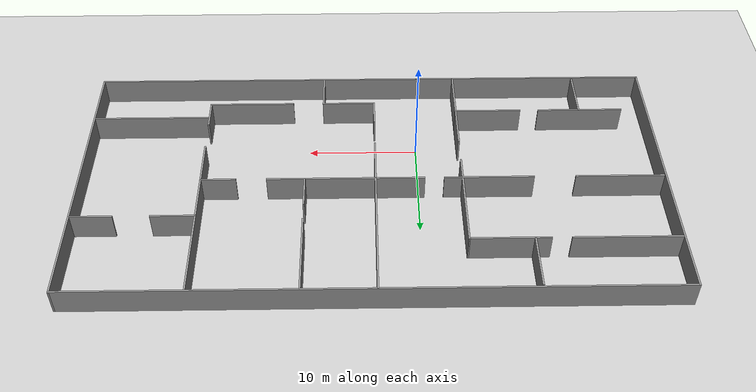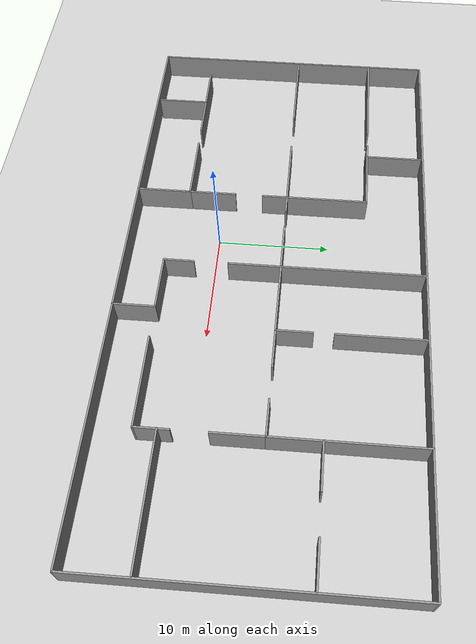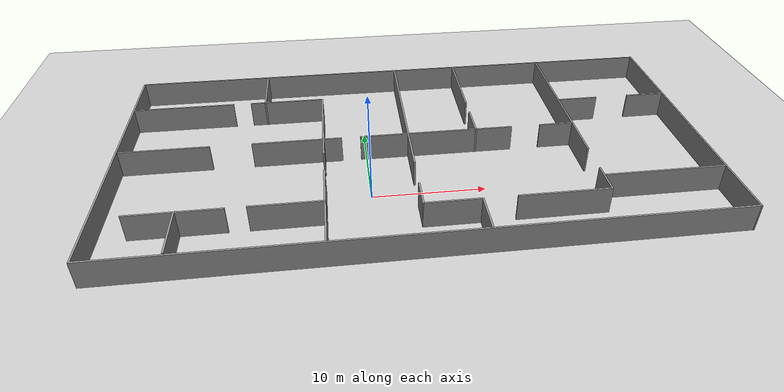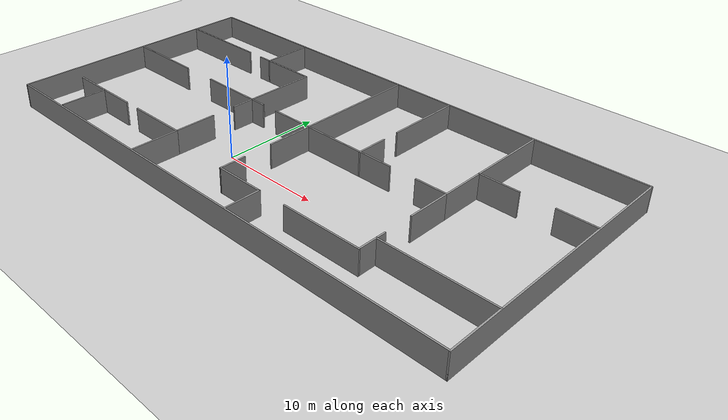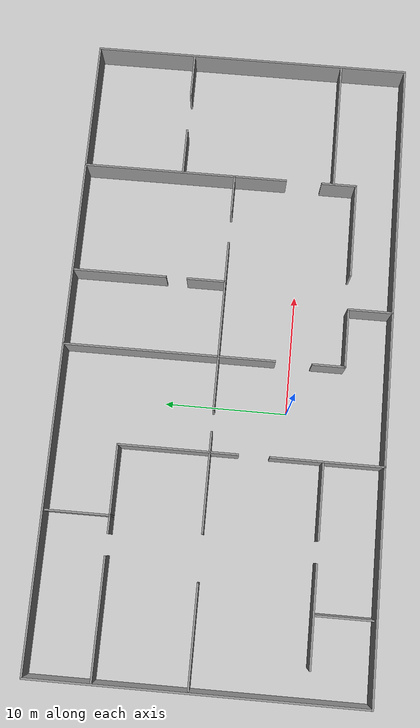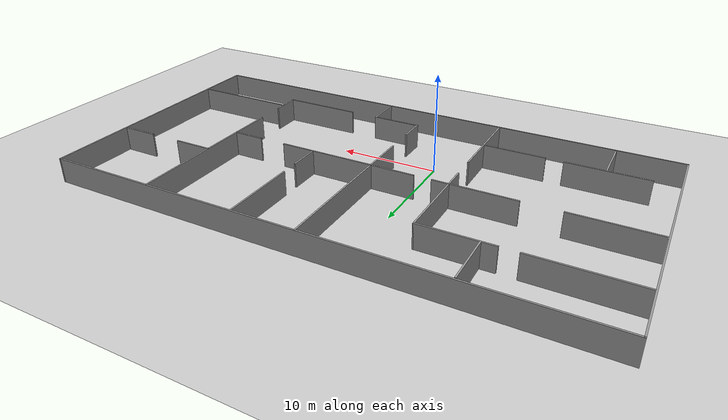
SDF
<sdf version="1.7">
 <world name="default">
  <plugin name="XBot::GzClockPlugin" filename="libxbot2_gz_clock.so"/>
  <gravity>0 0 -9.81</gravity>
  <model name="ground_plane">
   <static>1</static>
   <link name="link">
    <collision name="collision">
     <geometry><plane><normal>0 0 1</normal><size>100 100</size></plane></geometry>
     <surface><friction><ode><mu>1</mu><mu2>1</mu2></ode></friction></surface>
    </collision>
    <visual name="visual">
     <cast_shadows>0</cast_shadows>
     <geometry><plane><normal>0 0 1</normal><size>100 100</size></plane></geometry>
     <material>
      <script><uri>file://media/materials/scripts/gazebo.material</uri><name>Gazebo/Grey</name></script>
     </material>
    </visual>
   </link>
  </model>
  <light name="sun" type="directional">
   <pose>0 0 10 0 -0 0</pose>
   <diffuse>0.8 0.8 0.8 1</diffuse>
   <specular>0.2 0.2 0.2 1</specular>
   <attenuation>
    <range>1000</range>
    <constant>0.9</constant>
    <linear>0.01</linear>
    <quadratic>0.001</quadratic>
   </attenuation>
   <direction>-0.5 0.1 -0.9</direction>
   <spot><inner_angle>0</inner_angle><outer_angle>0</outer_angle><falloff>0</falloff></spot>
  </light>
  <physics name="update_rate" type="ode">
   <real_time_update_rate>4000</real_time_update_rate>
   <max_step_size>0.00025</max_step_size>
   <max_contacts>5</max_contacts>
   <bullet>
    <solver><iters>100</iters><sor>1.55</sor><type>sequential_impulse</type></solver>
    <constraints>
     <contact_surface_layer>0.2</contact_surface_layer>
     <cfm>0.005</cfm>
     <erp>0.2</erp>
     <split_impulse>1</split_impulse>
     <split_impulse_penetration_threshold>-0.01</split_impulse_penetration_threshold>
    </constraints>
   </bullet>
   <ode>
    <solver>
     <iters>50</iters>
     <sor>1.2</sor>
     <type>quick</type>
     <use_dynamic_moi_rescaling>0</use_dynamic_moi_rescaling>
    </solver>
    <constraints>
     <contact_surface_layer>0.0002</contact_surface_layer>
     <contact_max_correcting_vel>500</contact_max_correcting_vel>
     <cfm>1e-06</cfm>
     <erp>0.3</erp>
    </constraints>
   </ode>
   <real_time_factor>1</real_time_factor>
  </physics>
  <magnetic_field>6e-06 2.3e-05 -4.2e-05</magnetic_field>
  <atmosphere type="adiabatic"/>
  <scene><ambient>0.4 0.4 0.4 1</ambient><background>0.7 0.7 0.7 1</background><shadows>1</shadows></scene>
  <spherical_coordinates>
   <surface_model>EARTH_WGS84</surface_model>
   <latitude_deg>0</latitude_deg>
   <longitude_deg>0</longitude_deg>
   <elevation>0</elevation>
   <heading_deg>0</heading_deg>
  </spherical_coordinates>
  <model name="HugeFloor">
   <pose>4.15108 5.32375 0 0 -0 0</pose>
   <link name="Wall_10">
    <collision name="Wall_10_Collision">
     <geometry><box><size>26.75 0.15 2.5</size></box></geometry>
     <pose>0 0 1.25 0 -0 0</pose>
    </collision>
    <visual name="Wall_10_Visual">
     <pose>0 0 1.25 0 -0 0</pose>
     <geometry><box><size>26.75 0.15 2.5</size></box></geometry>
     <material>
      <script><uri>file://media/materials/scripts/gazebo.material</uri><name>Gazebo/Grey</name></script>
      <ambient>1 1 1 1</ambient>
     </material>
     <meta><layer>0</layer></meta>
    </visual>
    <pose>26.3 0 0 0 -0 1.5708</pose>
   </link>
   <link name="Wall_11">
    <collision name="Wall_11_Collision">
     <geometry><box><size>52.75 0.15 2.5</size></box></geometry>
     <pose>0 0 1.25 0 -0 0</pose>
    </collision>
    <visual name="Wall_11_Visual">
     <pose>0 0 1.25 0 -0 0</pose>
     <geometry><box><size>52.75 0.15 2.5</size></box></geometry>
     <material>
      <script><uri>file://media/materials/scripts/gazebo.material</uri><name>Gazebo/Grey</name></script>
      <ambient>1 1 1 1</ambient>
     </material>
     <meta><layer>0</layer></meta>
    </visual>
    <pose>1e-06 13.3 0 0 -0 3.14159</pose>
   </link>
   <link name="Wall_12">
    <collision name="Wall_12_Collision">
     <geometry><box><size>26.75 0.15 2.5</size></box></geometry>
     <pose>0 0 1.25 0 -0 0</pose>
    </collision>
    <visual name="Wall_12_Visual">
     <pose>0 0 1.25 0 -0 0</pose>
     <geometry><box><size>26.75 0.15 2.5</size></box></geometry>
     <material>
      <script><uri>file://media/materials/scripts/gazebo.material</uri><name>Gazebo/Grey</name></script>
      <ambient>1 1 1 1</ambient>
     </material>
     <meta><layer>0</layer></meta>
    </visual>
    <pose>-26.3 0 0 0 -0 -1.5708</pose>
   </link>
   <link name="Wall_14">
    <collision name="Wall_14_Collision">
     <geometry><box><size>9.5 0.15 2.5</size></box></geometry>
     <pose>0 0 1.25 0 -0 0</pose>
    </collision>
    <visual name="Wall_14_Visual">
     <pose>0 0 1.25 0 -0 0</pose>
     <geometry><box><size>9.5 0.15 2.5</size></box></geometry>
     <material>
      <script><uri>file://media/materials/scripts/gazebo.material</uri><name>Gazebo/Grey</name></script>
      <ambient>1 1 1 1</ambient>
     </material>
     <meta><layer>0</layer></meta>
    </visual>
    <pose>-21.4892 8.00106 0 0 -0 0</pose>
   </link>
   <link name="Wall_16">
    <collision name="Wall_16_Collision">
     <geometry><box><size>1.5 0.15 2.5</size></box></geometry>
     <pose>0 0 1.25 0 -0 0</pose>
    </collision>
    <visual name="Wall_16_Visual">
     <pose>0 0 1.25 0 -0 0</pose>
     <geometry><box><size>1.5 0.15 2.5</size></box></geometry>
     <material>
      <script><uri>file://media/materials/scripts/gazebo.material</uri><name>Gazebo/Grey</name></script>
      <ambient>1 1 1 1</ambient>
     </material>
     <meta><layer>0</layer></meta>
    </visual>
    <pose>-14.3244 7.97951 0 0 -0 0</pose>
   </link>
   <link name="Wall_17">
    <collision name="Wall_17_Collision">
     <geometry><box><size>5.25 0.15 2.5</size></box></geometry>
     <pose>0 0 1.25 0 -0 0</pose>
    </collision>
    <visual name="Wall_17_Visual">
     <pose>0 0 1.25 0 -0 0</pose>
     <geometry><box><size>5.25 0.15 2.5</size></box></geometry>
     <material>
      <script><uri>file://media/materials/scripts/gazebo.material</uri><name>Gazebo/Grey</name></script>
      <ambient>1 1 1 1</ambient>
     </material>
     <meta><layer>0</layer></meta>
    </visual>
    <pose>-13.6494 10.5295 0 0 -0 1.5708</pose>
   </link>
   <link name="Wall_19">
    <collision name="Wall_19_Collision">
     <geometry><box><size>5.75 0.15 2.5</size></box></geometry>
     <pose>0 0 1.25 0 -0 0</pose>
    </collision>
    <visual name="Wall_19_Visual">
     <pose>0 0 1.25 0 -0 0</pose>
     <geometry><box><size>5.75 0.15 2.5</size></box></geometry>
     <material>
      <script><uri>file://media/materials/scripts/gazebo.material</uri><name>Gazebo/Grey</name></script>
      <ambient>1 1 1 1</ambient>
     </material>
     <meta><layer>0</layer></meta>
    </visual>
    <pose>-10.8494 7.97951 0 0 -0 0</pose>
   </link>
   <link name="Wall_20">
    <collision name="Wall_20_Collision">
     <geometry><box><size>7.5 0.15 2.5</size></box></geometry>
     <pose>0 0 1.25 0 -0 0</pose>
    </collision>
    <visual name="Wall_20_Visual">
     <pose>0 0 1.25 0 -0 0</pose>
     <geometry><box><size>7.5 0.15 2.5</size></box></geometry>
     <material>
      <script><uri>file://media/materials/scripts/gazebo.material</uri><name>Gazebo/Grey</name></script>
      <ambient>1 1 1 1</ambient>
     </material>
     <meta><layer>0</layer></meta>
    </visual>
    <pose>-8.0494 4.30451 0 0 -0 -1.5708</pose>
   </link>
   <link name="Wall_21">
    <collision name="Wall_21_Collision">
     <geometry><box><size>1.75 0.15 2.5</size></box></geometry>
     <pose>0 0 1.25 0 -0 0</pose>
    </collision>
    <visual name="Wall_21_Visual">
     <pose>0 0 1.25 0 -0 0</pose>
     <geometry><box><size>1.75 0.15 2.5</size></box></geometry>
     <material>
      <script><uri>file://media/materials/scripts/gazebo.material</uri><name>Gazebo/Grey</name></script>
      <ambient>1 1 1 1</ambient>
     </material>
     <meta><layer>0</layer></meta>
    </visual>
    <pose>-7.2494 0.629514 0 0 -0 0</pose>
   </link>
   <link name="Wall_23">
    <collision name="Wall_23_Collision">
     <geometry><box><size>4.5 0.15 2.5</size></box></geometry>
     <pose>0 0 1.25 0 -0 0</pose>
    </collision>
    <visual name="Wall_23_Visual">
     <pose>0 0 1.25 0 -0 0</pose>
     <geometry><box><size>4.5 0.15 2.5</size></box></geometry>
     <material>
      <script><uri>file://media/materials/scripts/gazebo.material</uri><name>Gazebo/Grey</name></script>
      <ambient>1 1 1 1</ambient>
     </material>
     <meta><layer>0</layer></meta>
    </visual>
    <pose>-2.4244 0.629514 0 0 -0 0</pose>
   </link>
   <link name="Wall_24">
    <collision name="Wall_24_Collision">
     <geometry><box><size>12.75 0.15 2.5</size></box></geometry>
     <pose>0 0 1.25 0 -0 0</pose>
    </collision>
    <visual name="Wall_24_Visual">
     <pose>0 0 1.25 0 -0 0</pose>
     <geometry><box><size>12.75 0.15 2.5</size></box></geometry>
     <material>
      <script><uri>file://media/materials/scripts/gazebo.material</uri><name>Gazebo/Grey</name></script>
      <ambient>1 1 1 1</ambient>
     </material>
     <meta><layer>0</layer></meta>
    </visual>
    <pose>-0.249404 6.92951 0 0 -0 1.5708</pose>
   </link>
   <link name="Wall_26">
    <collision name="Wall_26_Collision">
     <geometry><box><size>6.5 0.15 2.5</size></box></geometry>
     <pose>0 0 1.25 0 -0 0</pose>
    </collision>
    <visual name="Wall_26_Visual">
     <pose>0 0 1.25 0 -0 0</pose>
     <geometry><box><size>6.5 0.15 2.5</size></box></geometry>
     <material>
      <script><uri>file://media/materials/scripts/gazebo.material</uri><name>Gazebo/Grey</name></script>
      <ambient>1 1 1 1</ambient>
     </material>
     <meta><layer>0</layer></meta>
    </visual>
    <pose>2.9256 0.629514 0 0 -0 0</pose>
   </link>
   <link name="Wall_27">
    <collision name="Wall_27_Collision">
     <geometry><box><size>3.25 0.15 2.5</size></box></geometry>
     <pose>0 0 1.25 0 -0 0</pose>
    </collision>
    <visual name="Wall_27_Visual">
     <pose>0 0 1.25 0 -0 0</pose>
     <geometry><box><size>3.25 0.15 2.5</size></box></geometry>
     <material>
      <script><uri>file://media/materials/scripts/gazebo.material</uri><name>Gazebo/Grey</name></script>
      <ambient>1 1 1 1</ambient>
     </material>
     <meta><layer>0</layer></meta>
    </visual>
    <pose>6.1006 2.17951 0 0 -0 1.5708</pose>
   </link>
   <link name="Wall_29">
    <collision name="Wall_29_Collision">
     <geometry><box><size>7.75 0.15 2.5</size></box></geometry>
     <pose>0 0 1.25 0 -0 0</pose>
    </collision>
    <visual name="Wall_29_Visual">
     <pose>0 0 1.25 0 -0 0</pose>
     <geometry><box><size>7.75 0.15 2.5</size></box></geometry>
     <material>
      <script><uri>file://media/materials/scripts/gazebo.material</uri><name>Gazebo/Grey</name></script>
      <ambient>1 1 1 1</ambient>
     </material>
     <meta><layer>0</layer></meta>
    </visual>
    <pose>6.1006 9.37951 0 0 -0 1.5708</pose>
   </link>
   <link name="Wall_31">
    <collision name="Wall_31_Collision">
     <geometry><box><size>2.39299 0.15 2.5</size></box></geometry>
     <pose>0 0 1.25 0 -0 0</pose>
    </collision>
    <visual name="Wall_31_Visual">
     <pose>0 0 1.25 0 -0 0</pose>
     <geometry><box><size>2.39299 0.15 2.5</size></box></geometry>
     <material>
      <script><uri>file://media/materials/scripts/gazebo.material</uri><name>Gazebo/Grey</name></script>
      <ambient>1 1 1 1</ambient>
     </material>
     <meta><layer>0</layer></meta>
    </visual>
    <pose>-8.0494 -0.491984 0 0 -0 -1.5708</pose>
   </link>
   <link name="Wall_33">
    <collision name="Wall_33_Collision">
     <geometry><box><size>4.35701 0.15 2.5</size></box></geometry>
     <pose>0 0 1.25 0 -0 0</pose>
    </collision>
    <visual name="Wall_33_Visual">
     <pose>0 0 1.25 0 -0 0</pose>
     <geometry><box><size>4.35701 0.15 2.5</size></box></geometry>
     <material>
      <script><uri>file://media/materials/scripts/gazebo.material</uri><name>Gazebo/Grey</name></script>
      <ambient>1 1 1 1</ambient>
     </material>
     <meta><layer>0</layer></meta>
    </visual>
    <pose>-8.0494 -6.31698 0 0 -0 -1.5708</pose>
   </link>
   <link name="Wall_34">
    <collision name="Wall_34_Collision">
     <geometry><box><size>6.25 0.15 2.5</size></box></geometry>
     <pose>0 0 1.25 0 -0 0</pose>
    </collision>
    <visual name="Wall_34_Visual">
     <pose>0 0 1.25 0 -0 0</pose>
     <geometry><box><size>6.25 0.15 2.5</size></box></geometry>
     <material>
      <script><uri>file://media/materials/scripts/gazebo.material</uri><name>Gazebo/Grey</name></script>
      <ambient>1 1 1 1</ambient>
     </material>
     <meta><layer>0</layer></meta>
    </visual>
    <pose>-11.0994 -8.42049 0 0 -0 3.14159</pose>
   </link>
   <link name="Wall_36">
    <collision name="Wall_36_Collision">
     <geometry><box><size>8 0.15 2.5</size></box></geometry>
     <pose>0 0 1.25 0 -0 0</pose>
    </collision>
    <visual name="Wall_36_Visual">
     <pose>0 0 1.25 0 -0 0</pose>
     <geometry><box><size>8 0.15 2.5</size></box></geometry>
     <material>
      <script><uri>file://media/materials/scripts/gazebo.material</uri><name>Gazebo/Grey</name></script>
      <ambient>1 1 1 1</ambient>
     </material>
     <meta><layer>0</layer></meta>
    </visual>
    <pose>-19.9244 -8.42049 0 0 -0 3.14159</pose>
   </link>
   <link name="Wall_38">
    <collision name="Wall_38_Collision">
     <geometry><box><size>6.5 0.15 2.5</size></box></geometry>
     <pose>0 0 1.25 0 -0 0</pose>
    </collision>
    <visual name="Wall_38_Visual">
     <pose>0 0 1.25 0 -0 0</pose>
     <geometry><box><size>6.5 0.15 2.5</size></box></geometry>
     <material>
      <script><uri>file://media/materials/scripts/gazebo.material</uri><name>Gazebo/Grey</name></script>
      <ambient>1 1 1 1</ambient>
     </material>
     <meta><layer>0</layer></meta>
    </visual>
    <pose>-11.2244 0.629514 0 0 -0 3.14159</pose>
   </link>
   <link name="Wall_40">
    <collision name="Wall_40_Collision">
     <geometry><box><size>8 0.15 2.5</size></box></geometry>
     <pose>0 0 1.25 0 -0 0</pose>
    </collision>
    <visual name="Wall_40_Visual">
     <pose>0 0 1.25 0 -0 0</pose>
     <geometry><box><size>8 0.15 2.5</size></box></geometry>
     <material>
      <script><uri>file://media/materials/scripts/gazebo.material</uri><name>Gazebo/Grey</name></script>
      <ambient>1 1 1 1</ambient>
     </material>
     <meta><layer>0</layer></meta>
    </visual>
    <pose>-22.1744 0.629514 0 0 -0 3.14159</pose>
   </link>
   <link name="Wall_42">
    <collision name="Wall_42_Collision">
     <geometry><box><size>4.75 0.15 2.5</size></box></geometry>
     <pose>0 0 1.25 0 -0 0</pose>
    </collision>
    <visual name="Wall_42_Visual">
     <pose>0 0 1.25 0 -0 0</pose>
     <geometry><box><size>4.75 0.15 2.5</size></box></geometry>
     <material>
      <script><uri>file://media/materials/scripts/gazebo.material</uri><name>Gazebo/Grey</name></script>
      <ambient>1 1 1 1</ambient>
     </material>
     <meta><layer>0</layer></meta>
    </visual>
    <pose>-19.8359 -10.7359 0 0 -0 -1.5708</pose>
   </link>
   <link name="Wall_46">
    <collision name="Wall_46_Collision">
     <geometry><box><size>5 0.15 2.5</size></box></geometry>
     <pose>0 0 1.25 0 -0 0</pose>
    </collision>
    <visual name="Wall_46_Visual">
     <pose>0 0 1.25 0 -0 0</pose>
     <geometry><box><size>5 0.15 2.5</size></box></geometry>
     <material>
      <script><uri>file://media/materials/scripts/gazebo.material</uri><name>Gazebo/Grey</name></script>
      <ambient>1 1 1 1</ambient>
     </material>
     <meta><layer>0</layer></meta>
    </visual>
    <pose>-8.0494 -10.8455 0 0 -0 -1.5708</pose>
   </link>
   <link name="Wall_48">
    <collision name="Wall_48_Collision">
     <geometry><box><size>4.75 0.15 2.5</size></box></geometry>
     <pose>0 0 1.25 0 -0 0</pose>
    </collision>
    <visual name="Wall_48_Visual">
     <pose>0 0 1.25 0 -0 0</pose>
     <geometry><box><size>4.75 0.15 2.5</size></box></geometry>
     <material>
      <script><uri>file://media/materials/scripts/gazebo.material</uri><name>Gazebo/Grey</name></script>
      <ambient>1 1 1 1</ambient>
     </material>
     <meta><layer>0</layer></meta>
    </visual>
    <pose>-0.249404 -1.67049 0 0 -0 -1.5708</pose>
   </link>
   <link name="Wall_50">
    <collision name="Wall_50_Collision">
     <geometry><box><size>2.75 0.15 2.5</size></box></geometry>
     <pose>0 0 1.25 0 -0 0</pose>
    </collision>
    <visual name="Wall_50_Visual">
     <pose>0 0 1.25 0 -0 0</pose>
     <geometry><box><size>2.75 0.15 2.5</size></box></geometry>
     <material>
      <script><uri>file://media/materials/scripts/gazebo.material</uri><name>Gazebo/Grey</name></script>
      <ambient>1 1 1 1</ambient>
     </material>
     <meta><layer>0</layer></meta>
    </visual>
    <pose>-0.249404 -8.37049 0 0 -0 -1.5708</pose>
   </link>
   <link name="Wall_51">
    <collision name="Wall_51_Collision">
     <geometry><box><size>5 0.15 2.5</size></box></geometry>
     <pose>0 0 1.25 0 -0 0</pose>
    </collision>
    <visual name="Wall_51_Visual">
     <pose>0 0 1.25 0 -0 0</pose>
     <geometry><box><size>5 0.15 2.5</size></box></geometry>
     <material>
      <script><uri>file://media/materials/scripts/gazebo.material</uri><name>Gazebo/Grey</name></script>
      <ambient>1 1 1 1</ambient>
     </material>
     <meta><layer>0</layer></meta>
    </visual>
    <pose>2.1756 -9.67049 0 0 -0 0</pose>
   </link>
   <link name="Wall_54">
    <collision name="Wall_54_Collision">
     <geometry><box><size>3.75 0.15 2.5</size></box></geometry>
     <pose>0 0 1.25 0 -0 0</pose>
    </collision>
    <visual name="Wall_54_Visual">
     <pose>0 0 1.25 0 -0 0</pose>
     <geometry><box><size>3.75 0.15 2.5</size></box></geometry>
     <material>
      <script><uri>file://media/materials/scripts/gazebo.material</uri><name>Gazebo/Grey</name></script>
      <ambient>1 1 1 1</ambient>
     </material>
     <meta><layer>0</layer></meta>
    </visual>
    <pose>4.6006 -11.4705 0 0 -0 -1.5708</pose>
   </link>
   <link name="Wall_56">
    <collision name="Wall_56_Collision">
     <geometry><box><size>3.5 0.15 2.5</size></box></geometry>
     <pose>0 0 1.25 0 -0 0</pose>
    </collision>
    <visual name="Wall_56_Visual">
     <pose>0 0 1.25 0 -0 0</pose>
     <geometry><box><size>3.5 0.15 2.5</size></box></geometry>
     <material>
      <script><uri>file://media/materials/scripts/gazebo.material</uri><name>Gazebo/Grey</name></script>
      <ambient>1 1 1 1</ambient>
     </material>
     <meta><layer>0</layer></meta>
    </visual>
    <pose>7.7756 0.629514 0 0 -0 0</pose>
   </link>
   <link name="Wall_58">
    <collision name="Wall_58_Collision">
     <geometry><box><size>3.25 0.15 2.5</size></box></geometry>
     <pose>0 0 1.25 0 -0 0</pose>
    </collision>
    <visual name="Wall_58_Visual">
     <pose>0 0 1.25 0 -0 0</pose>
     <geometry><box><size>3.25 0.15 2.5</size></box></geometry>
     <material>
      <script><uri>file://media/materials/scripts/gazebo.material</uri><name>Gazebo/Grey</name></script>
      <ambient>1 1 1 1</ambient>
     </material>
     <meta><layer>0</layer></meta>
    </visual>
    <pose>13.8506 0.629514 0 0 -0 0</pose>
   </link>
   <link name="Wall_59">
    <collision name="Wall_59_Collision">
     <geometry><box><size>12.75 0.15 2.5</size></box></geometry>
     <pose>0 0 1.25 0 -0 0</pose>
    </collision>
    <visual name="Wall_59_Visual">
     <pose>0 0 1.25 0 -0 0</pose>
     <geometry><box><size>12.75 0.15 2.5</size></box></geometry>
     <material>
      <script><uri>file://media/materials/scripts/gazebo.material</uri><name>Gazebo/Grey</name></script>
      <ambient>1 1 1 1</ambient>
     </material>
     <meta><layer>0</layer></meta>
    </visual>
    <pose>15.4006 6.92951 0 0 -0 1.5708</pose>
   </link>
   <link name="Wall_61">
    <collision name="Wall_61_Collision">
     <geometry><box><size>4.5 0.15 2.5</size></box></geometry>
     <pose>0 0 1.25 0 -0 0</pose>
    </collision>
    <visual name="Wall_61_Visual">
     <pose>0 0 1.25 0 -0 0</pose>
     <geometry><box><size>4.5 0.15 2.5</size></box></geometry>
     <material>
      <script><uri>file://media/materials/scripts/gazebo.material</uri><name>Gazebo/Grey</name></script>
      <ambient>1 1 1 1</ambient>
     </material>
     <meta><layer>0</layer></meta>
    </visual>
    <pose>15.4006 -1.54549 0 0 -0 -1.5708</pose>
   </link>
   <link name="Wall_63">
    <collision name="Wall_63_Collision">
     <geometry><box><size>3 0.15 2.5</size></box></geometry>
     <pose>0 0 1.25 0 -0 0</pose>
    </collision>
    <visual name="Wall_63_Visual">
     <pose>0 0 1.25 0 -0 0</pose>
     <geometry><box><size>3 0.15 2.5</size></box></geometry>
     <material>
      <script><uri>file://media/materials/scripts/gazebo.material</uri><name>Gazebo/Grey</name></script>
      <ambient>1 1 1 1</ambient>
     </material>
     <meta><layer>0</layer></meta>
    </visual>
    <pose>15.4006 -8.24549 0 0 -0 -1.5708</pose>
   </link>
   <link name="Wall_64">
    <collision name="Wall_64_Collision">
     <geometry><box><size>8 0.15 2.5</size></box></geometry>
     <pose>0 0 1.25 0 -0 0</pose>
    </collision>
    <visual name="Wall_64_Visual">
     <pose>0 0 1.25 0 -0 0</pose>
     <geometry><box><size>8 0.15 2.5</size></box></geometry>
     <material>
      <script><uri>file://media/materials/scripts/gazebo.material</uri><name>Gazebo/Grey</name></script>
      <ambient>1 1 1 1</ambient>
     </material>
     <meta><layer>0</layer></meta>
    </visual>
    <pose>11.4756 -9.67049 0 0 -0 3.14159</pose>
   </link>
   <link name="Wall_67">
    <collision name="Wall_67_Collision">
     <geometry><box><size>11 0.15 2.5</size></box></geometry>
     <pose>0 0 1.25 0 -0 0</pose>
    </collision>
    <visual name="Wall_67_Visual">
     <pose>0 0 1.25 0 -0 0</pose>
     <geometry><box><size>11 0.15 2.5</size></box></geometry>
     <material>
      <script><uri>file://media/materials/scripts/gazebo.material</uri><name>Gazebo/Grey</name></script>
      <ambient>1 1 1 1</ambient>
     </material>
     <meta><layer>0</layer></meta>
    </visual>
    <pose>20.828 -7.77559 0 0 -0 0</pose>
   </link>
   <link name="Wall_69">
    <collision name="Wall_69_Collision">
     <geometry><box><size>4 0.15 2.5</size></box></geometry>
     <pose>0 0 1.25 0 -0 0</pose>
    </collision>
    <visual name="Wall_69_Visual">
     <pose>0 0 1.25 0 -0 0</pose>
     <geometry><box><size>4 0.15 2.5</size></box></geometry>
     <material>
      <script><uri>file://media/materials/scripts/gazebo.material</uri><name>Gazebo/Grey</name></script>
      <ambient>1 1 1 1</ambient>
     </material>
     <meta><layer>0</layer></meta>
    </visual>
    <pose>17.328 5.0222 0 0 -0 0</pose>
   </link>
   <link name="Wall_71">
    <collision name="Wall_71_Collision">
     <geometry><box><size>3.75 0.15 2.5</size></box></geometry>
     <pose>0 0 1.25 0 -0 0</pose>
    </collision>
    <visual name="Wall_71_Visual">
     <pose>0 0 1.25 0 -0 0</pose>
     <geometry><box><size>3.75 0.15 2.5</size></box></geometry>
     <material>
      <script><uri>file://media/materials/scripts/gazebo.material</uri><name>Gazebo/Grey</name></script>
      <ambient>1 1 1 1</ambient>
     </material>
     <meta><layer>0</layer></meta>
    </visual>
    <pose>24.403 5.0222 0 0 -0 0</pose>
   </link>
   <link name="Wall_9">
    <collision name="Wall_9_Collision">
     <geometry><box><size>52.75 0.15 2.5</size></box></geometry>
     <pose>0 0 1.25 0 -0 0</pose>
    </collision>
    <visual name="Wall_9_Visual">
     <pose>0 0 1.25 0 -0 0</pose>
     <geometry><box><size>52.75 0.15 2.5</size></box></geometry>
     <material>
      <script><uri>file://media/materials/scripts/gazebo.material</uri><name>Gazebo/Grey</name></script>
      <ambient>1 1 1 1</ambient>
     </material>
     <meta><layer>0</layer></meta>
    </visual>
    <pose>1e-06 -13.3 0 0 -0 0</pose>
   </link>
   <static>1</static>
  </model>
 </world>
</sdf>
